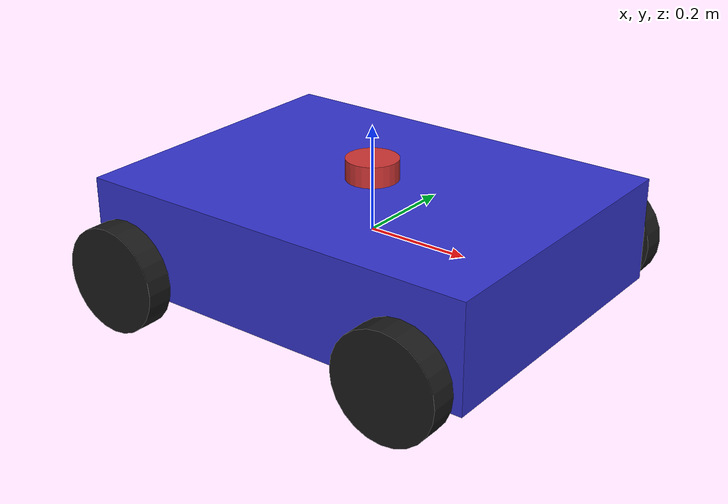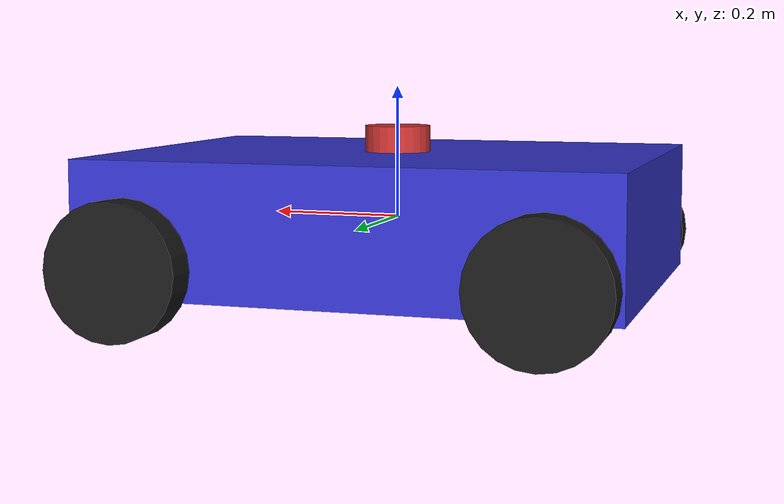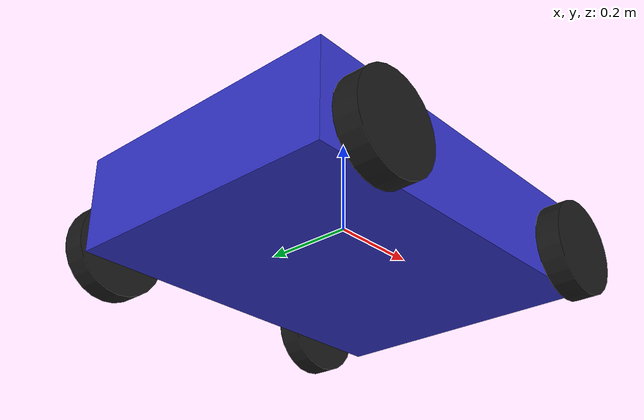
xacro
<?xml version="1.0"?>
<robot xmlns:xacro="http://www.ros.org/wiki/xacro" name="transport_robot">

  <!-- Arguments -->
  <xacro:arg name="robot_name" default="robot"/>

  <!-- Properties -->
  <xacro:property name="base_width" value="0.6"/>
  <xacro:property name="base_length" value="0.8"/>
  <xacro:property name="base_height" value="0.2"/>
  <xacro:property name="wheel_radius" value="0.1"/>
  <xacro:property name="wheel_width" value="0.05"/>
  <xacro:property name="wheel_offset_x" value="0.3"/>
  <xacro:property name="wheel_offset_y" value="0.35"/>
  <xacro:property name="wheel_offset_z" value="-0.05"/>

  <!-- Base link -->
  <link name="base_link">
    <visual>
      <origin xyz="0 0 0" rpy="0 0 0"/>
      <geometry>
        <box size="${base_length} ${base_width} ${base_height}"/>
      </geometry>
      <material name="blue">
        <color rgba="0.2 0.2 0.8 1.0"/>
      </material>
    </visual>
    <collision>
      <origin xyz="0 0 0" rpy="0 0 0"/>
      <geometry>
        <box size="${base_length} ${base_width} ${base_height}"/>
      </geometry>
    </collision>
    <inertial>
      <origin xyz="-0.3 0 0" rpy="0 0 0"/>
      <mass value="20.0"/>
      <!-- 正確な慣性テンソルを計算 -->
      <inertia
        ixx="${(1.0/12.0) * 20.0 * (base_width*base_width + base_height*base_height)}"
        ixy="0.0"
        ixz="0.0"
        iyy="${(1.0/12.0) * 20.0 * (base_length*base_length + base_height*base_height)}"
        iyz="0.0"
        izz="${(1.0/12.0) * 20.0 * (base_length*base_length + base_width*base_width)}"/>
    </inertial>
  </link>

  <!-- Wheel macro -->
  <xacro:macro name="wheel" params="prefix x y">
    <link name="${prefix}_wheel">
      <visual>
        <origin xyz="0 0 0" rpy="1.5708 0 0"/>
        <geometry>
          <cylinder radius="${wheel_radius}" length="${wheel_width}"/>
        </geometry>
        <material name="black">
          <color rgba="0.1 0.1 0.1 1.0"/>
        </material>
      </visual>
      <collision>
        <origin xyz="0 0 0" rpy="1.5708 0 0"/>
        <geometry>
          <cylinder radius="${wheel_radius}" length="${wheel_width}"/>
        </geometry>
      </collision>
      <inertial>
        <origin xyz="0 0 0" rpy="1.5708 0 0"/>
        <mass value="2.0"/>
        <!-- 円柱の慣性テンソル -->
        <inertia
          ixx="${(1.0/12.0) * 2.0 * (3*wheel_radius*wheel_radius + wheel_width*wheel_width)}"
          ixy="0.0"
          ixz="0.0"
          iyy="${(1.0/12.0) * 2.0 * (3*wheel_radius*wheel_radius + wheel_width*wheel_width)}"
          iyz="0.0"
          izz="${0.5 * 2.0 * wheel_radius*wheel_radius}"/>
      </inertial>
    </link>

    <joint name="${prefix}_wheel_joint" type="continuous">
      <parent link="base_link"/>
      <child link="${prefix}_wheel"/>
      <origin xyz="${x} ${y} ${wheel_offset_z}" rpy="0 0 0"/>
      <axis xyz="0 1 0"/>
    </joint>
  </xacro:macro>

  <!-- Create 4 wheels -->
  <xacro:wheel prefix="front_left" x="${wheel_offset_x}" y="${wheel_offset_y}"/>
  <xacro:wheel prefix="front_right" x="${wheel_offset_x}" y="${-wheel_offset_y}"/>
  <xacro:wheel prefix="rear_left" x="${-wheel_offset_x}" y="${wheel_offset_y}"/>
  <xacro:wheel prefix="rear_right" x="${-wheel_offset_x}" y="${-wheel_offset_y}"/>

  <!-- LiDAR sensor -->
  <link name="lidar_link">
    <visual>
      <origin xyz="0 0 0" rpy="0 0 0"/>
      <geometry>
        <cylinder radius="0.05" length="0.04"/>
      </geometry>
      <material name="red">
        <color rgba="0.8 0.2 0.2 1.0"/>
      </material>
    </visual>
    <collision>
      <origin xyz="0 0 0" rpy="0 0 0"/>
      <geometry>
        <cylinder radius="0.05" length="0.04"/>
      </geometry>
    </collision>
    <inertial>
      <origin xyz="0 0 0" rpy="0 0 0"/>
      <mass value="0.1"/>
      <inertia ixx="0.001" ixy="0.0" ixz="0.0" iyy="0.001" iyz="0.0" izz="0.001"/>
    </inertial>
  </link>

  <joint name="lidar_joint" type="fixed">
    <parent link="base_link"/>
    <child link="lidar_link"/>
    <origin xyz="0 0 ${base_height/2 + 0.02}" rpy="0 0 0"/>
  </joint>

  <!-- Gazebo plugins -->
  <gazebo>
    <plugin name="differential_drive_controller" filename="libgazebo_ros_diff_drive.so">
      <ros>
        <namespace>$(arg robot_name)</namespace>
      </ros>
      <update_rate>30</update_rate>
      <left_joint>rear_left_wheel_joint</left_joint>
      <right_joint>rear_right_wheel_joint</right_joint>
      <wheel_separation>${base_width}</wheel_separation>
      <wheel_diameter>${2*wheel_radius}</wheel_diameter>
      <max_wheel_torque>20</max_wheel_torque>
      <max_wheel_acceleration>1.0</max_wheel_acceleration>
      <command_topic>cmd_vel</command_topic>
      <publish_odom>true</publish_odom>
      <publish_odom_tf>true</publish_odom_tf>
      <publish_wheel_tf>true</publish_wheel_tf>
      <odometry_topic>odom</odometry_topic>
      <odometry_frame>odom</odometry_frame>
      <robot_base_frame>base_link</robot_base_frame>
      <!-- 重要: 回転中心を後輪軸に設定 -->
      <wheel_separation>${base_width}</wheel_separation>
      <wheel_diameter>${2*wheel_radius}</wheel_diameter>
      <!-- オドメトリの基準点を調整 -->
      <odometry_source>world</odometry_source>
    </plugin>
  </gazebo>

  <!-- LiDAR Gazebo plugin -->
  <gazebo reference="lidar_link">
    <sensor type="ray" name="lidar_sensor">
      <pose>0 0 0 0 0 0</pose>
      <visualize>true</visualize>
      <update_rate>10</update_rate>
      <ray>
        <scan>
          <horizontal>
            <samples>360</samples>
            <resolution>1</resolution>
            <min_angle>-3.14159</min_angle>
            <max_angle>3.14159</max_angle>
          </horizontal>
        </scan>
        <range>
          <min>0.1</min>
          <max>10.0</max>
          <resolution>0.01</resolution>
        </range>
        <noise>
          <type>gaussian</type>
          <mean>0.0</mean>
          <stddev>0.01</stddev>
        </noise>
      </ray>
      <plugin name="gazebo_ros_lidar_controller" filename="libgazebo_ros_ray_sensor.so">
        <ros>
          <namespace>$(arg robot_name)</namespace>
          <remapping>~/out:=scan</remapping>
        </ros>
        <output_type>sensor_msgs/LaserScan</output_type>
        <frame_name>lidar_link</frame_name>
      </plugin>
    </sensor>
  </gazebo>

  <!-- Gazebo materials -->
  <gazebo reference="base_link">
    <material>Gazebo/Blue</material>
  </gazebo>

  <gazebo reference="front_left_wheel">
    <material>Gazebo/Black</material>
  </gazebo>

  <gazebo reference="front_right_wheel">
    <material>Gazebo/Black</material>
  </gazebo>

  <gazebo reference="rear_left_wheel">
    <material>Gazebo/Black</material>
  </gazebo>

  <gazebo reference="rear_right_wheel">
    <material>Gazebo/Black</material>
  </gazebo>

</robot>
